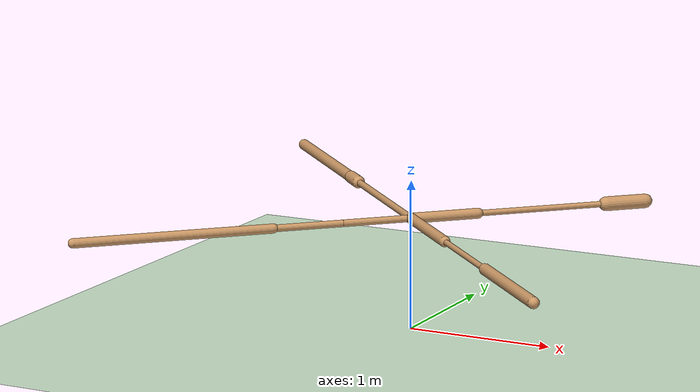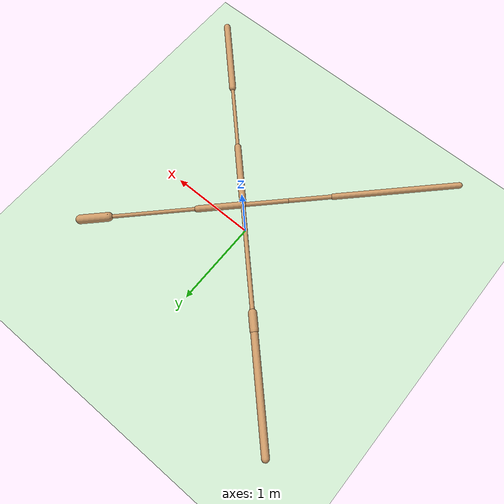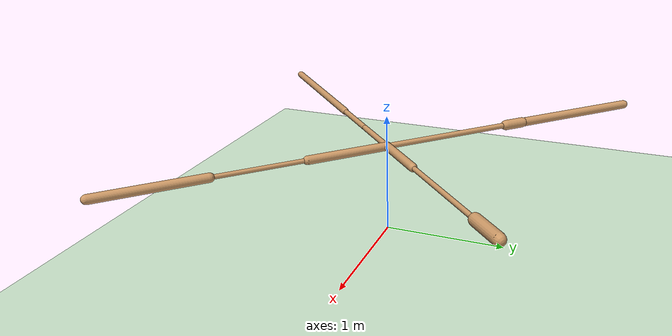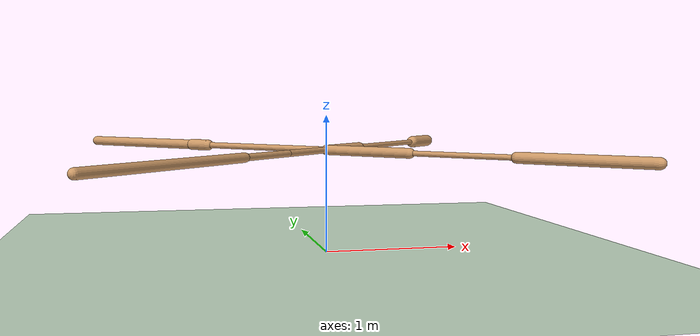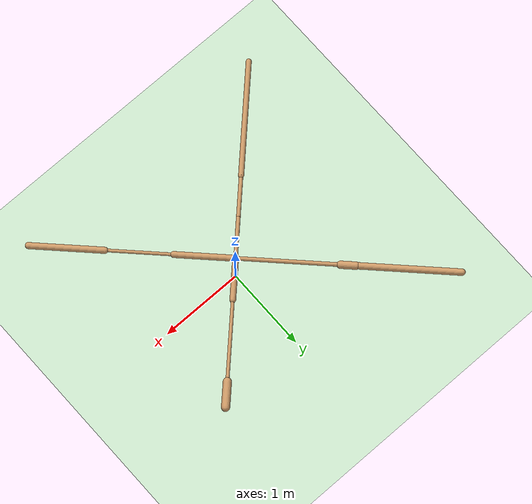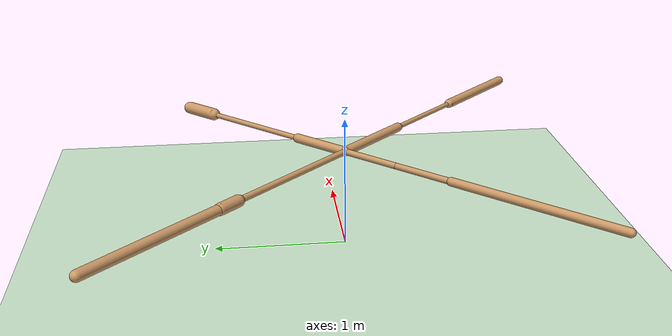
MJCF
<mujoco model="ant">
  <compiler angle="degree" coordinate="local" inertiafromgeom="true" />
  <option integrator="RK4" timestep="0.01" />
  <custom>
    <numeric data="0.0 0.0 0.55 1.0 0.0 0.0 0.0 0.0 1.0 0.0 -1.0 0.0 -1.0 0.0 1.0" name="init_qpos" />
  </custom>
  <default>
    <joint armature="1" damping="1" limited="true" />
    <geom conaffinity="0" condim="3" density="5.0" friction="1 0.5 0.5" margin="0.01" rgba="0.8 0.6 0.4 1" />
  </default>
  <asset>
    <texture builtin="gradient" height="100" rgb1="1 1 1" rgb2="0 0 0" type="skybox" width="100" />
    <texture builtin="flat" height="1278" mark="cross" markrgb="1 1 1" name="texgeom" random="0.01" rgb1="0.8 0.6 0.4" rgb2="0.8 0.6 0.4" type="cube" width="127" />
    <texture builtin="checker" height="100" name="texplane" rgb1="0 0 0" rgb2="0.8 0.8 0.8" type="2d" width="100" />
    <material name="MatPlane" reflectance="0.5" shininess="1" specular="1" texrepeat="60 60" texture="texplane" />
    <material name="geom" texture="texgeom" texuniform="true" />
  </asset>
  <worldbody>
    <light cutoff="100" diffuse="1 1 1" dir="-0 0 -1.3" directional="true" exponent="1" pos="0 0 1.3" specular=".1 .1 .1" />
    <geom conaffinity="1" condim="3" material="MatPlane" name="floor" pos="0 0 0" rgba="0.8 0.9 0.8 1" size="40 40 40" type="plane" />
    <body name="torso" pos="0 0 0.75">
      <camera name="track" mode="trackcom" pos="0 -11 5" xyaxes="1 0 0 0 0.5 1" />
      <geom name="torso_geom" pos="0 0 0" size="0.0366084910929203" type="sphere" />
      <joint armature="0" damping="0" limited="false" margin="0.01" name="root" pos="0 0 0" type="free" />
      <body name="front_left_leg" pos="0 0 0">
        <geom fromto="0 0 0 0.33045995235443115 0.33045995235443115 0" name="aux_1_geom" size="0.03484195098280907" type="capsule" />
        <body name="aux_1" pos="0.33045995235443115 0.33045995235443115 0">
          <joint axis="0 0 1" name="hip_1" pos="0.0 0.0 0.0" range="-30 30" type="hinge" />
          <geom fromto="0 0 0 0.6438761353492737 0.6438761353492737 0" name="left_leg_geom" size="0.01994301751255989" type="capsule" />
          <body name="left_leg_geom_aux" pos="0.6438761353492737 0.6438761353492737 0">
            <joint axis="-1 1 0" name="ankle_1" pos="0.0 0.0 0.0" range="30 70" type="hinge" />
            <geom fromto="0 0 0 0.19997650384902954 0.19997650384902954 0" name="left_ankle_geom" size="0.04806172475218773" type="capsule" />
          </body>
        </body>
      </body>
      <body name="front_right_leg" pos="0 0 0">
        <geom fromto="0 0 0 -0.8062549233436584 0.8062549233436584 0" name="aux_2_geom" size="0.023243088275194168" type="capsule" />
        <body name="aux_2" pos="-0.8062549233436584 0.8062549233436584 0">
          <joint axis="0 0 1" name="hip_2" pos="0.0 0.0 0.0" range="-30 30" type="hinge" />
          <geom fromto="0 0 0 -0.12055444717407227 0.12055444717407227 0" name="right_leg_geom" size="0.043401993811130524" type="capsule" />
          <body name="right_leg_geom_aux" pos="-0.12055444717407227 0.12055444717407227 0">
            <joint axis="1 1 0" name="ankle_2" pos="0.0 0.0 0.0" range="-70 -30" type="hinge" />
            <geom fromto="0 0 0 -0.8124803304672241 0.8124803304672241 0" name="right_ankle_geom" size="0.03814727067947388" type="capsule" />
          </body>
        </body>
      </body>
      <body name="back_leg" pos="0 0 0">
        <geom fromto="0 0 0 -0.3316698968410492 -0.3316698968410492 0" name="aux_3_geom" size="0.02346339076757431" type="capsule" />
        <body name="aux_3" pos="-0.3316698968410492 -0.3316698968410492 0">
          <joint axis="0 0 1" name="hip_3" pos="0.0 0.0 0.0" range="-30 30" type="hinge" />
          <geom fromto="0 0 0 -0.3324373960494995 -0.3324373960494995 0" name="back_leg_geom" size="0.023299219086766243" type="capsule" />
          <body name="back_leg_geom_aux" pos="-0.3324373960494995 -0.3324373960494995 0">
            <joint axis="-1 1 0" name="ankle_3" pos="0.0 0.0 0.0" range="-70 -30" type="hinge" />
            <geom fromto="0 0 0 -0.9352032542228699 -0.9352032542228699 0" name="third_ankle_geom" size="0.03165002539753914" type="capsule" />
          </body>
        </body>
      </body>
      <body name="right_back_leg" pos="0 0 0">
        <geom fromto="0 0 0 0.47725704312324524 -0.47725704312324524 0" name="aux_4_geom" size="0.035618800669908524" type="capsule" />
        <body name="aux_4" pos="0.47725704312324524 -0.47725704312324524 0">
          <joint axis="0 0 1" name="hip_4" pos="0.0 0.0 0.0" range="-30 30" type="hinge" />
          <geom fromto="0 0 0 0.5278708338737488 -0.5278708338737488 0" name="rightback_leg_geom" size="0.018681909888982773" type="capsule" />
          <body name="rightback_leg_geom_aux" pos="0.5278708338737488 -0.5278708338737488 0">
            <joint axis="1 1 0" name="ankle_4" pos="0.0 0.0 0.0" range="30 70" type="hinge" />
            <geom fromto="0 0 0 0.5899307727813721 -0.5899307727813721 0" name="fourth_ankle_geom" size="0.036796241998672485" type="capsule" />
          </body>
        </body>
      </body>
    </body>
  </worldbody>
  <actuator>
    <motor ctrllimited="true" ctrlrange="-1.0 1.0" joint="hip_4" gear="150" />
    <motor ctrllimited="true" ctrlrange="-1.0 1.0" joint="ankle_4" gear="150" />
    <motor ctrllimited="true" ctrlrange="-1.0 1.0" joint="hip_1" gear="150" />
    <motor ctrllimited="true" ctrlrange="-1.0 1.0" joint="ankle_1" gear="150" />
    <motor ctrllimited="true" ctrlrange="-1.0 1.0" joint="hip_2" gear="150" />
    <motor ctrllimited="true" ctrlrange="-1.0 1.0" joint="ankle_2" gear="150" />
    <motor ctrllimited="true" ctrlrange="-1.0 1.0" joint="hip_3" gear="150" />
    <motor ctrllimited="true" ctrlrange="-1.0 1.0" joint="ankle_3" gear="150" />
  </actuator>
</mujoco>
